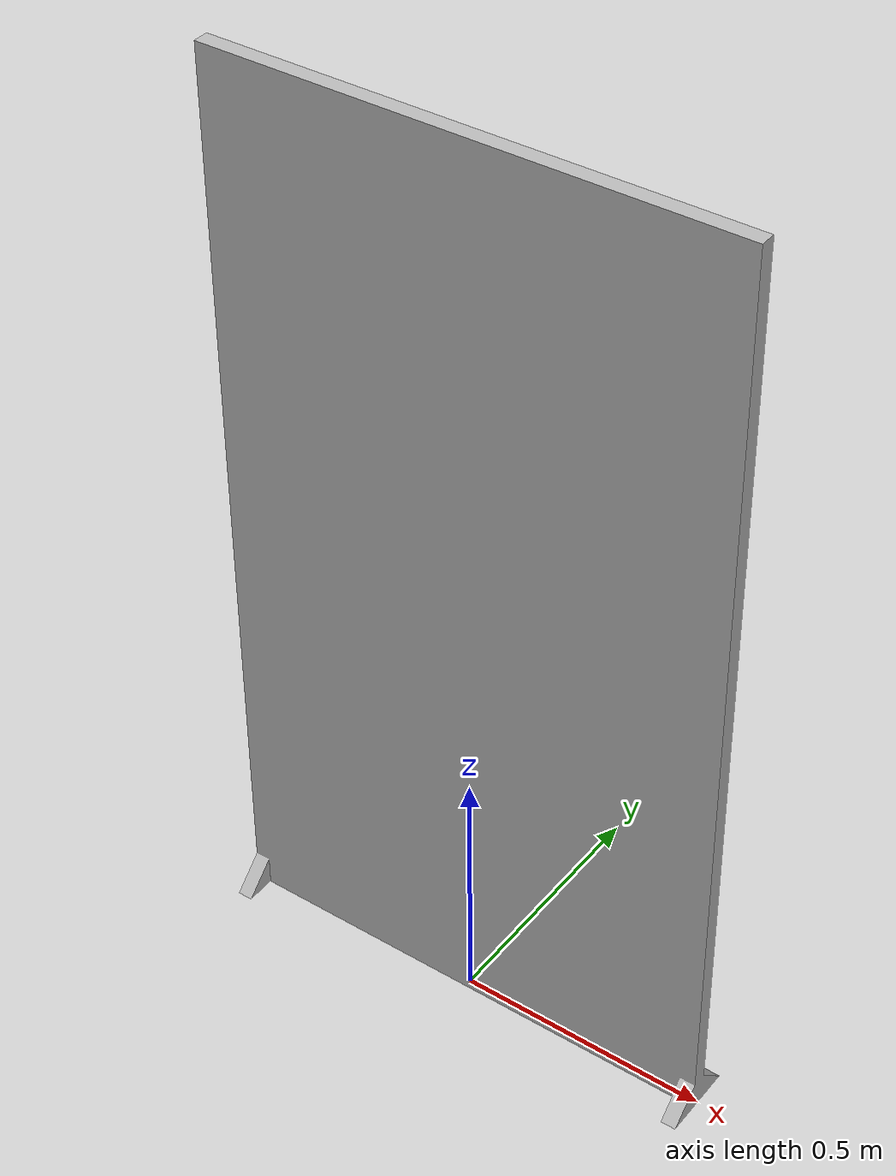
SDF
<sdf version='1.7'>
  <model name='screen'>
    <link name='base_link'>
      <inertial>
        <pose>-0 0 0.89649 0 -0 0</pose>
        <mass>54.216</mass>
        <inertia>
          <ixx>14.751</ixx>
          <ixy>2.6682e-17</ixy>
          <ixz>3.3413e-15</ixz>
          <iyy>19.297</iyy>
          <iyz>1.4444e-16</iyz>
          <izz>4.5552</izz>
        </inertia>
      </inertial>
      <collision name='base_link_collision'>
        <pose>0 0 0 0 -0 0</pose>
        <geometry>
          <mesh>
            <scale>1 1 1</scale>
            <uri>model://screen/meshes/base_link.STL</uri>
          </mesh>
        </geometry>
      </collision>
      <visual name='base_link_visual'>
        <pose>0 0 0 0 -0 0</pose>
        <geometry>
          <mesh>
            <scale>1 1 1</scale>
            <uri>model://screen/meshes/base_link.STL</uri>
          </mesh>
        </geometry>
      </visual>
    </link>
  </model>
</sdf>
